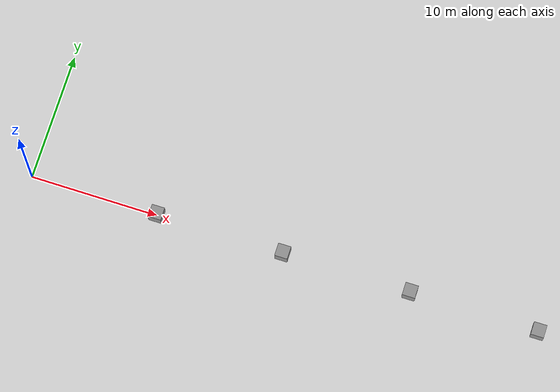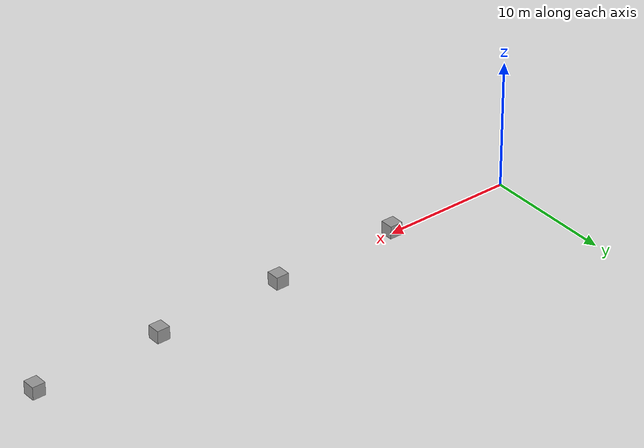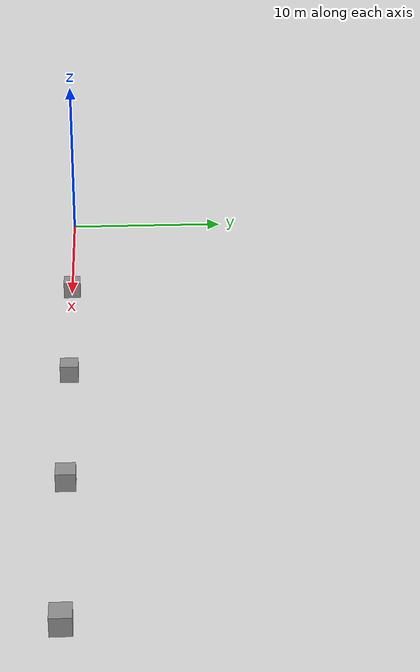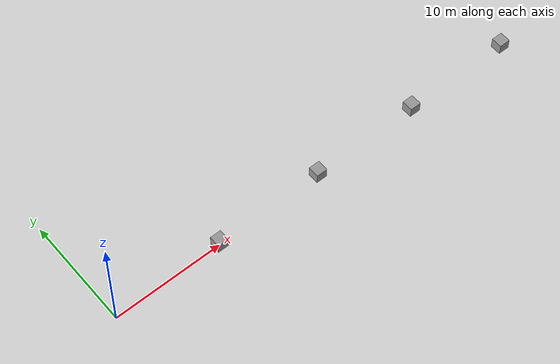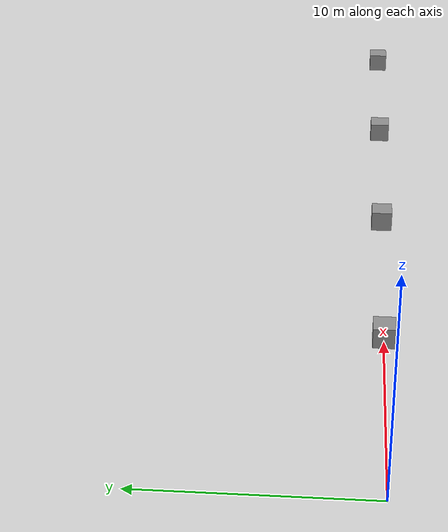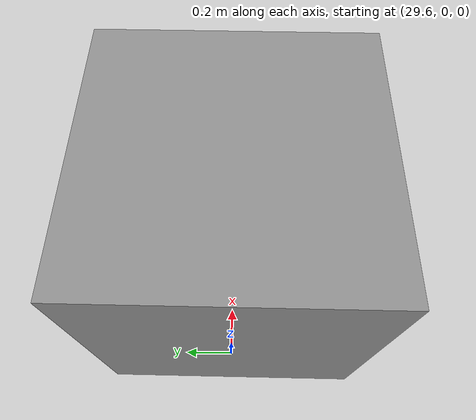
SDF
<sdf version="1.4">
 <world name="default">
  <include><uri>model://sun</uri></include>
  <scene>
   <sky><time>10</time><clouds><speed>5</speed><direction>1.14</direction><humidity>0.3</humidity></clouds></sky>
  </scene>
  <include><name>obs1</name><uri>model://cube1</uri><pose>10 0 0 0 0 0</pose></include>
  <include><name>obs2</name><uri>model://cube1</uri><pose>20 0 0 0 0 0</pose></include>
  <include><name>obs3</name><uri>model://cube1</uri><pose>30 0 0 0 0 0</pose></include>
  <include><name>obs4</name><uri>model://cube1</uri><pose>40 0 0 0 0 0</pose></include>
 </world>
</sdf>

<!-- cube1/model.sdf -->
<sdf version="1.4">
  <model name="cube1">
    <static>true</static>
    <link name="link">
       <pose>0 0 0.5 0 0 0</pose>
       <collision name="collision">
        <geometry>
            <box>
              <size>1 1 1</size>
            </box>
        </geometry>
      </collision>
      <visual name="visual">
         <geometry>
            <box>
              <size>1 1 1</size>
            </box>
        </geometry>
          <material>
            <script>
              <uri>file://media/materials/scripts/gazebo.material</uri>
              <name>Gazebo/Grey</name>
            </script>
          </material>
      </visual>
    </link>
  </model>
</sdf>
